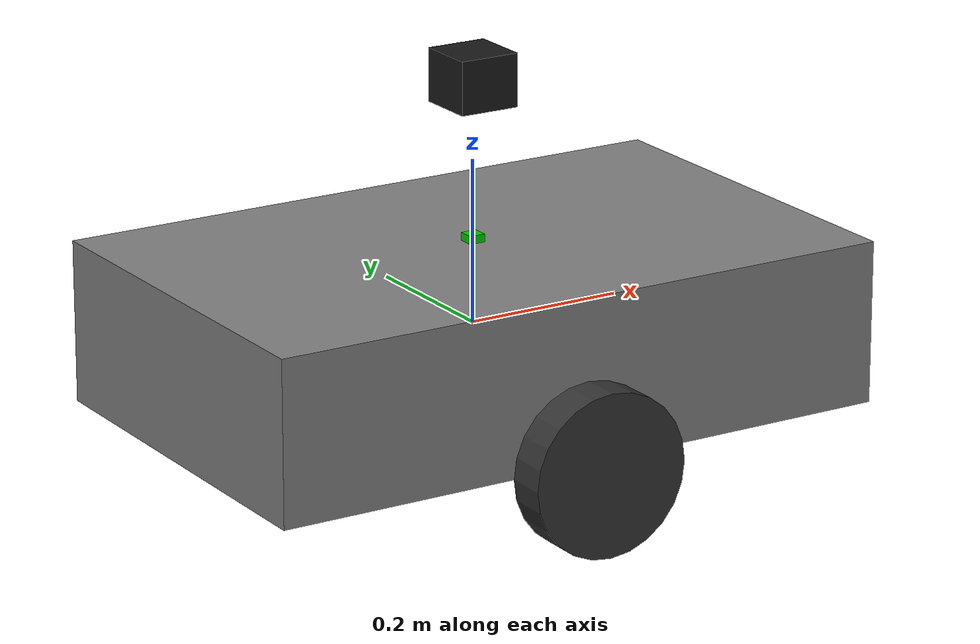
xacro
<?xml version="1.0"?>
<robot name="lunabot" xmlns:xacro="http://www.ros.org/wiki/xacro">

  <!-- =========================================================
       Inertial macro helpers
       ========================================================= -->

  <!-- Solid box inertia: mass m, dimensions x y z -->
  <xacro:macro name="box_inertia" params="m x y z">
    <inertial>
      <mass value="${m}"/>
      <inertia
        ixx="${m*(y*y + z*z)/12}" ixy="0" ixz="0"
        iyy="${m*(x*x + z*z)/12}" iyz="0"
        izz="${m*(x*x + y*y)/12}"/>
    </inertial>
  </xacro:macro>

  <!-- Solid cylinder inertia: mass m, radius r, length l (along Z) -->
  <xacro:macro name="cylinder_inertia" params="m r l">
    <inertial>
      <mass value="${m}"/>
      <inertia
        ixx="${m*(3*r*r + l*l)/12}" ixy="0" ixz="0"
        iyy="${m*(3*r*r + l*l)/12}" iyz="0"
        izz="${m*r*r/2}"/>
    </inertial>
  </xacro:macro>

  <link name="base_link">
    <visual>
      <geometry>
        <!-- PLACEHOLDER: measure and replace (length x width x height) -->
        <box size="0.8 0.5 0.2"/>
      </geometry>
      <material name="grey">
        <color rgba="0.5 0.5 0.5 1.0"/>
      </material>
    </visual>
    <collision>
      <geometry>
        <!-- PLACEHOLDER: measure and replace (length x width x height) -->
        <box size="0.8 0.5 0.2"/>
      </geometry>
    </collision>
    <!-- PLACEHOLDER: replace mass with actual chassis mass in kg -->
    <xacro:box_inertia m="20.0" x="0.8" y="0.5" z="0.2"/>
  </link>

  <link name="left_wheel">
    <visual>
      <geometry>
        <!-- PLACEHOLDER: measure and replace radius and length -->
        <cylinder radius="0.1" length="0.05"/>
      </geometry>
      <material name="dark_grey">
        <color rgba="0.2 0.2 0.2 1.0"/>
      </material>
    </visual>
    <collision>
      <geometry>
        <!-- PLACEHOLDER: measure and replace radius and length -->
        <cylinder radius="0.1" length="0.05"/>
      </geometry>
    </collision>
    <!-- PLACEHOLDER: replace mass with actual wheel mass in kg -->
    <xacro:cylinder_inertia m="1.5" r="0.1" l="0.05"/>
  </link>

  <link name="right_wheel">
    <visual>
      <geometry>
        <!-- PLACEHOLDER: measure and replace radius and length -->
        <cylinder radius="0.1" length="0.05"/>
      </geometry>
      <material name="dark_grey">
        <color rgba="0.2 0.2 0.2 1.0"/>
      </material>
    </visual>
    <collision>
      <geometry>
        <!-- PLACEHOLDER: measure and replace radius and length -->
        <cylinder radius="0.1" length="0.05"/>
      </geometry>
    </collision>
    <!-- PLACEHOLDER: replace mass with actual wheel mass in kg -->
    <xacro:cylinder_inertia m="1.5" r="0.1" l="0.05"/>
  </link>

  <link name="unitree_lidar_link">
    <visual>
      <geometry>
        <!-- Unitree L2 actual dimensions — verify with datasheet -->
        <box size="0.075 0.075 0.065"/>
      </geometry>
      <material name="black">
        <color rgba="0.1 0.1 0.1 1.0"/>
      </material>
    </visual>
    <collision>
      <geometry>
        <box size="0.075 0.075 0.065"/>
      </geometry>
    </collision>
    <!-- PLACEHOLDER: replace mass with actual LiDAR mass (Unitree L2 ~0.65kg) -->
    <xacro:box_inertia m="0.65" x="0.075" y="0.075" z="0.065"/>
  </link>

  <link name="imu_link">
    <visual>
      <geometry>
        <!-- PLACEHOLDER: measure and replace actual IMU PCB size -->
        <box size="0.02 0.02 0.02"/>
      </geometry>
      <material name="green">
        <color rgba="0.0 0.8 0.0 1.0"/>
      </material>
    </visual>
    <collision>
      <geometry>
        <!-- PLACEHOLDER: measure and replace actual IMU PCB size -->
        <box size="0.02 0.02 0.02"/>
      </geometry>
    </collision>
    <!-- PLACEHOLDER: replace mass with actual IMU mass in kg -->
    <xacro:box_inertia m="0.05" x="0.02" y="0.02" z="0.02"/>
  </link>

  <!-- =========================================================
       Joints
       ========================================================= -->

  <!-- Left wheel: continuous (driven), offset to left side (+Y) and down (-Z) -->
  <joint name="left_wheel_joint" type="continuous">
    <parent link="base_link"/>
    <child link="left_wheel"/>
    <!-- PLACEHOLDER: measure actual wheel axle position from chassis center -->
    <origin xyz="0.0 0.275 -0.1" rpy="${pi/2} 0 0"/>
    <axis xyz="0 0 1"/>
  </joint>

  <!-- Right wheel: continuous (driven), offset to right side (-Y) and down (-Z) -->
  <joint name="right_wheel_joint" type="continuous">
    <parent link="base_link"/>
    <child link="right_wheel"/>
    <!-- PLACEHOLDER: measure actual wheel axle position from chassis center -->
    <origin xyz="0.0 -0.275 -0.1" rpy="${pi/2} 0 0"/>
    <axis xyz="0 0 1"/>
  </joint>

  <!-- LiDAR: fixed, mounted on top of chassis -->
  <joint name="lidar_joint" type="fixed">
    <parent link="base_link"/>
    <child link="unitree_lidar_link"/>
    <!-- PLACEHOLDER: measure exact LiDAR mount position from chassis center -->
    <origin xyz="0.0 0.0 0.3" rpy="0 0 0"/>
  </joint>

  <!-- IMU: fixed, mounted on chassis -->
  <joint name="imu_joint" type="fixed">
    <parent link="base_link"/>
    <child link="imu_link"/>
    <!-- PLACEHOLDER: measure exact IMU mount position from chassis center -->
    <origin xyz="0.0 0.0 0.1" rpy="0 0 0"/>
  </joint>

</robot>
